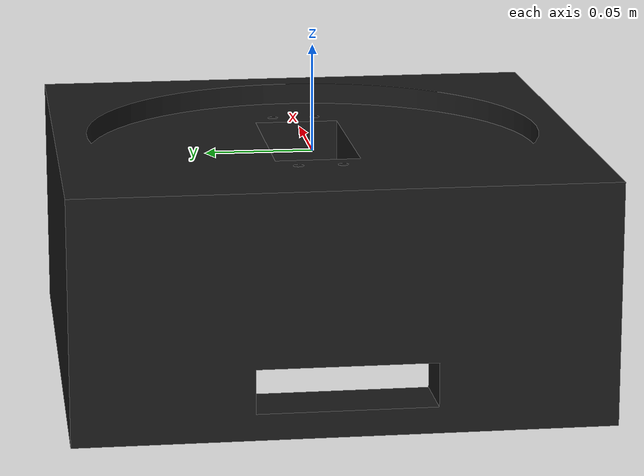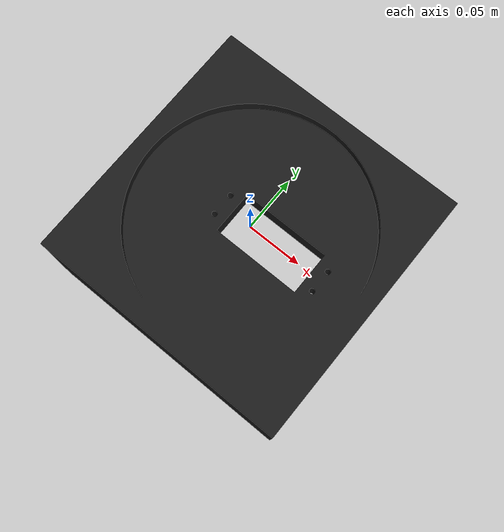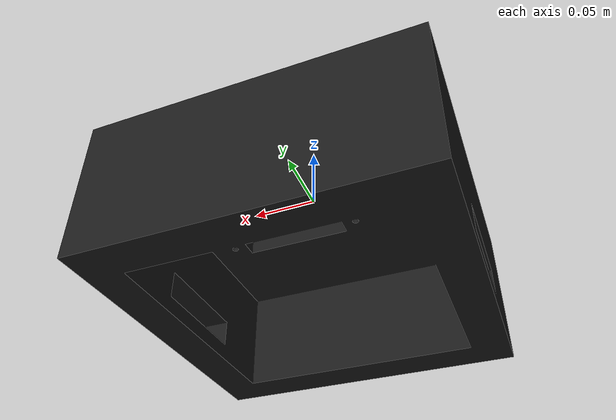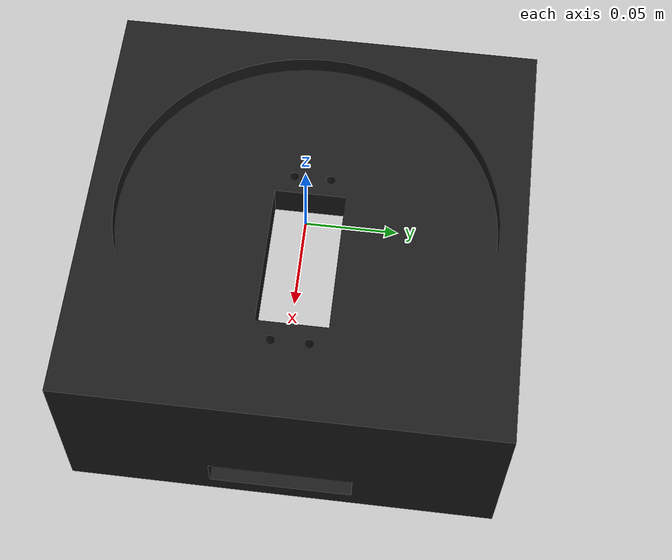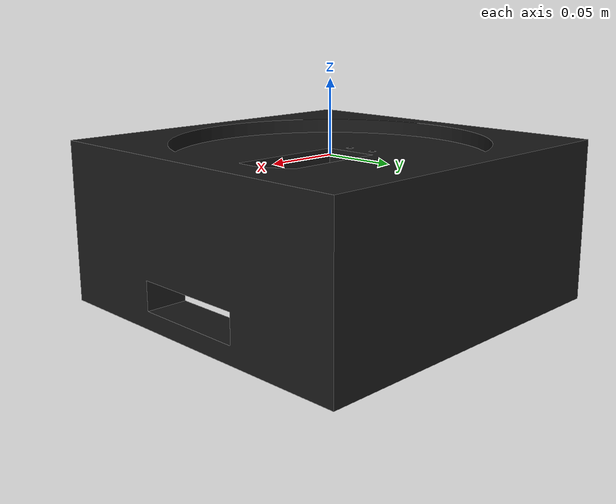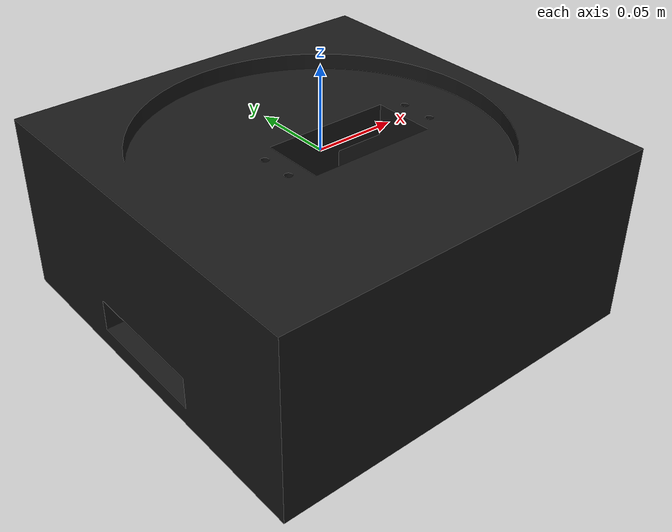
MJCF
<mujoco>
    <compiler meshdir="../meshes/Base" angle="radian" />

    <include file="materials.xml" />

    <default>
        <default class="visual">
            <geom pos="0.0 0.0 0.0" euler="0 0 0" />
        </default>
    </default>

    <asset>
        <mesh name="Base" file="Base.stl" scale="2.0 2.0 2.0" />
    </asset>

<asset>
    <material name="red_cam"   rgba="1 0 0 1"/>
    <material name="green_cam" rgba="0 1 0 1"/>
    <material name="blue_cam"  rgba="0 0 1 1"/>
</asset>

    <worldbody>
        <body name="Base">
            <geom type="mesh" mesh="Base" class="visual" material="deep_black" mass="0.5" contype="1" conaffinity="1"  />
                    <!-- Camera on the base stand, looking forward (+X direction) -->
              <!-- Camera body: red rectangular box as visual -->

        </body>

    </worldbody>
</mujoco>

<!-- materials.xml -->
<mujoco>

    <default>
        <mesh scale="0.001 0.001 0.001" />
        <geom contype="0" conaffinity="0" mass="0" />
    </default>

    <asset>
        <texture type="skybox" builtin="gradient" rgb1=".3 .5 .7" rgb2="1 1 1" width="32" height="512"/>
        <material name="blue" rgba="0.0 0.3 0.7 0.9" />
        <material name="black" rgba="0.2 0.2 0.2 0.9" />
        <material name="deep_black" rgba="0.1 0.1 0.1 0.9" />
        <material name="silver" rgba="0.5 0.5 0.5 1" />
        <material name="brown" rgba="1 0.7 0.5 0.9" />
    </asset>
</mujoco>
